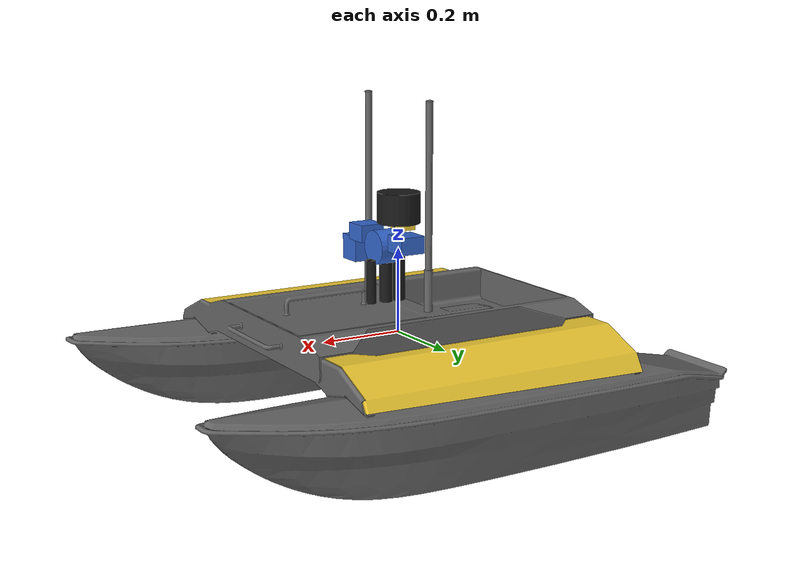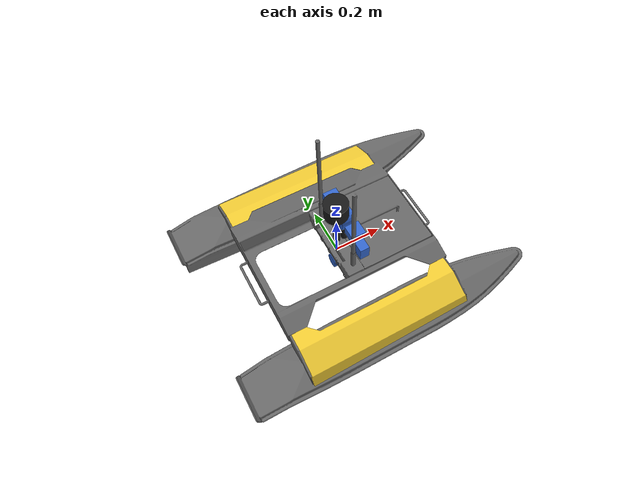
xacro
<?xml version="1.0"?>
<robot name="heron_sim" xmlns:xacro="http://www.ros.org/wiki/xacro">

  <xacro:arg name="namespace" default=""/>
  <xacro:property name="namespace" value="$(arg namespace)"/>

  <!-- Materials -->
  <material name="heron_grey">
    <color rgba="0.4 0.4 0.4 1"/>
  </material>
  <material name="heron_yellow">
    <color rgba="0.95 0.8 0.2 1"/>
  </material>
  <material name="black">
    <color rgba="0.1 0.1 0.1 1"/>
  </material>
  <material name="sensor_blue">
    <color rgba="0.2 0.4 0.8 1"/>
  </material>

  <!-- Heron Base Link (Hull) -->

  <link name="base_footprint"/>

  <joint name="base_footprint_joint" type="fixed">
    <origin xyz="0 0 0" rpy="0 0 0" />
    <parent link="base_footprint" />
    <child link="base_link" />
  </joint>

  <link name="base_link">
    <visual>
      <geometry>
        <mesh filename="package://heron_description/meshes/heron_base.stl" scale="1 1 1"/>
      </geometry>
      <origin xyz="0 0 0" rpy="0 0 0"/>
      <material name="heron_grey"/>
    </visual>
    <collision>
      <geometry>
        <box size="1.35 1.0 0.25"/>
      </geometry>
      <origin xyz="0 0 0.05" rpy="0 0 0"/>
    </collision>
    <inertial>
      <mass value="38.0"/>
      <origin xyz="0 0 0" rpy="0 0 0"/>
      <inertia ixx="3.4" ixy="0" ixz="0" iyy="6.0" iyz="0" izz="9.0"/>
    </inertial>
  </link>

  <!-- Left pontoon (visual only) -->
  <link name="left_pontoon">
    <visual>
      <geometry>
        <mesh filename="package://heron_description/meshes/left_panel.stl" scale="1 1 1"/>
      </geometry>
      <material name="heron_yellow"/>
      <origin xyz="0 0 0" rpy="0 0 0"/>
    </visual>
    <inertial>
      <mass value="0.1"/>
      <inertia ixx="0.001" ixy="0" ixz="0" iyy="0.001" iyz="0" izz="0.001"/>
    </inertial>
  </link>
  <joint name="left_pontoon_joint" type="fixed">
    <parent link="base_link"/>
    <child link="left_pontoon"/>
    <origin xyz="0 0.34495 0.04959" rpy="0 0 0"/>
  </joint>

  <!-- Right pontoon (visual only) -->
  <link name="right_pontoon">
    <visual>
      <geometry>
        <mesh filename="package://heron_description/meshes/right_panel.stl" scale="1 1 1"/>
      </geometry>
      <material name="heron_yellow"/>
      <origin xyz="0 0 0" rpy="0 0 0"/>
    </visual>
    <inertial>
      <mass value="0.1"/>
      <inertia ixx="0.001" ixy="0" ixz="0" iyy="0.001" iyz="0" izz="0.001"/>
    </inertial>
  </link>
  <joint name="right_pontoon_joint" type="fixed">
    <parent link="base_link"/>
    <child link="right_pontoon"/>
    <origin xyz="0 -0.34495 0.04959" rpy="0 0 0"/>
  </joint>

  <!-- IMU Sensor -->
  <link name="imu_link">
    <visual>
      <geometry>
        <box size="0.05 0.03 0.02"/>
      </geometry>
      <material name="heron_yellow"/>
    </visual>
    <inertial>
      <mass value="0.01"/>
      <inertia ixx="0.0001" ixy="0" ixz="0" iyy="0.0001" iyz="0" izz="0.0001"/>
    </inertial>
  </link>
  <joint name="imu_joint" type="fixed">
    <parent link="base_link"/>
    <child link="imu_link"/>
    <origin xyz="-0.01200 0.00000 0.25235" rpy="3.141592653589793 0 0"/>
  </joint>

  <gazebo>
    <plugin name="imu_controller" filename="libhector_gazebo_ros_imu.so">
      <updateRate>50.0</updateRate>
      <bodyName>imu_link</bodyName>
      <frameId>imu_link</frameId>
      <topicName>/sensors/imu/data</topicName>
      <accelDrift>0.005 0.005 0.005</accelDrift>
      <accelGaussianNoise>0.005 0.005 0.005</accelGaussianNoise>
      <rateDrift>0.005 0.005 0.005 </rateDrift>
      <rateGaussianNoise>0.005 0.005 0.005 </rateGaussianNoise>
      <headingDrift>0.005</headingDrift>
      <headingGaussianNoise>0.005</headingGaussianNoise>
    </plugin>
  </gazebo>

  <!-- GPS/NavSat link near the IMU for now. -->
  <link name="navsat_link">
    <inertial>
      <mass value="0.01"/>
      <inertia ixx="0.0001" ixy="0" ixz="0" iyy="0.0001" iyz="0" izz="0.0001"/>
    </inertial>
  </link>
  <joint name="navsat_joint" type="fixed">
    <parent link="base_link"/>
    <child link="navsat_link"/>
    <origin xyz="-0.01200 0.00000 0.29935" rpy="0 0 0"/>
  </joint>

  <!-- Horizontal Lidar (lidar_h) -->
  <!-- Seed mirrors slam_grande/config/sensors/heron_sensor_suite.yaml. -->
  <!-- Horizontal VLP-16: +X starboard, +Y bow, +Z up. -->
  <!-- Lidar H mount pole -->
  <link name="lidar_h_mount">
    <visual>
      <geometry>
        <cylinder radius="0.015" length="0.22"/>
      </geometry>
      <origin xyz="0 0 0" rpy="0 0 0"/>
      <material name="black"/>
    </visual>
    <inertial>
      <mass value="0.2"/>
      <inertia ixx="0.001" ixy="0" ixz="0" iyy="0.001" iyz="0" izz="0.001"/>
    </inertial>
  </link>
  <joint name="lidar_h_mount_joint" type="fixed">
    <parent link="base_link"/>
    <child link="lidar_h_mount"/>
    <origin xyz="0.00000 0.00000 0.16" rpy="0 0 0"/>
  </joint>

  <link name="lidar_h_link">
    <visual>
      <geometry>
        <cylinder radius="0.05086" length="0.07238"/>
      </geometry>
      <origin xyz="0 0 0" rpy="0 0 0"/>
      <material name="black"/>
    </visual>
    <collision>
      <geometry>
        <cylinder radius="0.05086" length="0.07238"/>
      </geometry>
    </collision>
    <inertial>
      <mass value="0.5"/>
      <inertia ixx="0.001" ixy="0" ixz="0" iyy="0.001" iyz="0" izz="0.001"/>
    </inertial>
  </link>
  <joint name="lidar_h_joint" type="fixed">
    <parent link="base_link"/>
    <child link="lidar_h_link"/>
    <origin xyz="0.00000 0.00000 0.29654" rpy="0 0 0"/>
  </joint>

  <!-- Vertical Lidar (lidar_v) -->
  <!-- Vertical VLP-16: +X port, +Y up, +Z forward. Keep the runtime
       ownership edge as lidar_h_link -> lidar_v_link. -->
  <!-- Lidar V mount pole -->
  <link name="lidar_v_mount">
    <visual>
      <geometry>
        <cylinder radius="0.012" length="0.14"/>
      </geometry>
      <origin xyz="0 0 0" rpy="0 0 0"/>
      <material name="black"/>
    </visual>
    <inertial>
      <mass value="0.1"/>
      <inertia ixx="0.001" ixy="0" ixz="0" iyy="0.001" iyz="0" izz="0.001"/>
    </inertial>
  </link>
  <joint name="lidar_v_mount_joint" type="fixed">
    <parent link="base_link"/>
    <child link="lidar_v_mount"/>
    <origin xyz="0.07400 0.00000 0.11" rpy="0 0 0"/>
  </joint>

  <link name="lidar_v_link">
    <visual>
      <geometry>
        <cylinder radius="0.04" length="0.06"/>
      </geometry>
      <origin xyz="0 0 0" rpy="0 0 0"/>
      <material name="sensor_blue"/>
    </visual>
    <collision>
      <geometry>
        <cylinder radius="0.04" length="0.06"/>
      </geometry>
    </collision>
    <inertial>
      <mass value="0.3"/>
      <inertia ixx="0.001" ixy="0" ixz="0" iyy="0.001" iyz="0" izz="0.001"/>
    </inertial>
  </link>
  <joint name="lidar_v_joint" type="fixed">
    <parent link="lidar_h_link"/>
    <child link="lidar_v_link"/>
    <origin xyz="0.03781 0.00000 -0.08819" rpy="1.5707963267948966 0 1.5707963267948966"/>
  </joint>

  <!-- Camera Mount Pole -->
  <link name="camera_mount">
    <visual>
      <geometry>
        <cylinder radius="0.015" length="0.20"/>
      </geometry>
      <origin xyz="0 0 0" rpy="0 0 0"/>
      <material name="black"/>
    </visual>
    <inertial>
      <mass value="0.2"/>
      <inertia ixx="0.001" ixy="0" ixz="0" iyy="0.001" iyz="0" izz="0.001"/>
    </inertial>
  </link>
  <joint name="camera_mount_joint" type="fixed">
    <parent link="base_link"/>
    <child link="camera_mount"/>
    <origin xyz="0.03445 0.00000 0.13000" rpy="0 0 0"/>
  </joint>

  <!-- Camera F1 (forward starboard) -->
  <link name="F1">
    <visual>
      <geometry>
        <box size="0.06 0.06 0.04"/>
      </geometry>
      <material name="sensor_blue"/>
    </visual>
    <collision>
      <geometry>
        <box size="0.06 0.06 0.04"/>
      </geometry>
    </collision>
    <inertial>
      <mass value="0.1"/>
      <inertia ixx="0.001" ixy="0" ixz="0" iyy="0.001" iyz="0" izz="0.001"/>
    </inertial>
  </link>
  <joint name="F1_joint" type="fixed">
    <parent link="base_link"/>
    <child link="F1"/>
    <origin xyz="0.03445 -0.089655 0.22909" rpy="0 0 0"/>
  </joint>

  <!-- Camera F1 optical frame -->
  <link name="F1_optical"/>
  <joint name="F1_optical_joint" type="fixed">
    <parent link="F1"/>
    <child link="F1_optical"/>
    <origin xyz="0 0 0" rpy="-1.5707963267948966 0 -1.5707963267948966"/>
  </joint>

  <xacro:if value="$(optenv HERON_CAMERA_F2 1)">
    <!-- Camera F2 (forward port) -->
    <link name="F2">
      <visual>
        <geometry>
          <box size="0.06 0.06 0.04"/>
        </geometry>
        <material name="sensor_blue"/>
      </visual>
      <collision>
        <geometry>
          <box size="0.06 0.06 0.04"/>
        </geometry>
      </collision>
      <inertial>
        <mass value="0.1"/>
        <inertia ixx="0.001" ixy="0" ixz="0" iyy="0.001" iyz="0" izz="0.001"/>
      </inertial>
    </link>
    <joint name="F2_joint" type="fixed">
      <parent link="base_link"/>
      <child link="F2"/>
      <origin xyz="0.03445 0.089655 0.22909" rpy="0 0 0"/>
    </joint>

    <!-- Camera F2 optical frame -->
    <link name="F2_optical"/>
    <joint name="F2_optical_joint" type="fixed">
      <parent link="F2"/>
      <child link="F2_optical"/>
      <origin xyz="0 0 0" rpy="-1.5707963267948966 0 -1.5707963267948966"/>
    </joint>
  </xacro:if>

  <xacro:if value="$(optenv HERON_CAMERA_F3 0)">
    <!-- Camera F3 (upward port) -->
    <link name="F3">
      <visual>
        <geometry>
          <box size="0.06 0.06 0.04"/>
        </geometry>
        <material name="sensor_blue"/>
      </visual>
      <collision>
        <geometry>
          <box size="0.06 0.06 0.04"/>
        </geometry>
      </collision>
      <inertial>
        <mass value="0.1"/>
        <inertia ixx="0.001" ixy="0" ixz="0" iyy="0.001" iyz="0" izz="0.001"/>
      </inertial>
    </link>
    <joint name="F3_joint" type="fixed">
      <parent link="base_link"/>
      <child link="F3"/>
      <origin xyz="0.03445 0.136515 0.18339" rpy="0 -1.5707963267948966 0"/>
    </joint>

    <!-- Camera F3 optical frame -->
    <link name="F3_optical"/>
    <joint name="F3_optical_joint" type="fixed">
      <parent link="F3"/>
      <child link="F3_optical"/>
      <origin xyz="0 0 0" rpy="-1.5707963267948966 0 -1.5707963267948966"/>
    </joint>
  </xacro:if>

  <xacro:if value="$(optenv HERON_CAMERA_F4 1)">
    <!-- Camera F4 (upward starboard) -->
    <link name="F4">
      <visual>
        <geometry>
          <box size="0.06 0.06 0.04"/>
        </geometry>
        <material name="sensor_blue"/>
      </visual>
      <collision>
        <geometry>
          <box size="0.06 0.06 0.04"/>
        </geometry>
      </collision>
      <inertial>
        <mass value="0.1"/>
        <inertia ixx="0.001" ixy="0" ixz="0" iyy="0.001" iyz="0" izz="0.001"/>
      </inertial>
    </link>
    <joint name="F4_joint" type="fixed">
      <parent link="base_link"/>
      <child link="F4"/>
      <origin xyz="0.03445 -0.136515 0.18339" rpy="0 -1.5707963267948966 0"/>
    </joint>

    <!-- Camera F4 optical frame -->
    <link name="F4_optical"/>
    <joint name="F4_optical_joint" type="fixed">
      <parent link="F4"/>
      <child link="F4_optical"/>
      <origin xyz="0 0 0" rpy="-1.5707963267948966 0 -1.5707963267948966"/>
    </joint>
  </xacro:if>

  <!-- Sonar -->
  <!-- Position: (0, 0, 80)mm -> (0, 0, -0.08)m (below waterline) -->
  <link name="sonar_link">
    <visual>
      <geometry>
        <cylinder radius="0.03" length="0.05"/>
      </geometry>
      <material name="sensor_blue"/>
    </visual>
    <inertial>
      <mass value="0.1"/>
      <inertia ixx="0.001" ixy="0" ixz="0" iyy="0.001" iyz="0" izz="0.001"/>
    </inertial>
  </link>
  <joint name="sonar_joint" type="fixed">
    <parent link="base_link"/>
    <child link="sonar_link"/>
    <origin xyz="0 0 -0.08" rpy="0 1.5708 0"/>
  </joint>

  <gazebo reference="sonar_link">
    <sensor type="ray" name="sonar">
      <update_rate>20</update_rate>
      <ray>
         <scan>
            <horizontal>
               <samples>480</samples>
               <resolution>1</resolution>
               <min_angle>-1.047198</min_angle>
               <max_angle>1.047198</max_angle>
            </horizontal>
            <vertical>
               <samples>1</samples>
               <resolution>1</resolution>
               <min_angle>0.0</min_angle>
               <max_angle>0.0</max_angle>
            </vertical>
         </scan>
         <range>
            <min>0.5</min>
            <max>100.0</max>
            <resolution>0.02</resolution>
         </range>
      </ray>
      <plugin name="sonar_plugin" filename="libgazebo_ros_velodyne_laser.so">
        <topicName>/sensors/sonar/scan</topicName>
        <frameName>sonar_link</frameName>
        <min_range>0.5</min_range>
        <max_range>100.0</max_range>
        <gaussianNoise>0.003</gaussianNoise>
        <organize_cloud>false</organize_cloud>
        <min_intensity>0.0</min_intensity>
      </plugin>
    </sensor>
  </gazebo>

  <!-- Debug/Extra Links (for compatibility) -->
  <link name="debug_extra_link"/>
  <joint name="debug_extra_joint" type="fixed">
    <parent link="base_link"/>
    <child link="debug_extra_link"/>
    <origin xyz="0 0 0" rpy="0 0 0"/>
  </joint>

  <link name="compat_extra_link"/>
  <joint name="compat_extra_joint" type="fixed">
    <parent link="base_link"/>
    <child link="compat_extra_link"/>
    <origin xyz="0 0 0" rpy="0 0 0"/>
  </joint>

  <link name="left_panel_link"/>
  <joint name="left_panel_joint" type="fixed">
    <parent link="base_link"/>
    <child link="left_panel_link"/>
    <origin xyz="0 0.5 0.1" rpy="0 0 0"/>
  </joint>

  <link name="right_panel_link"/>
  <joint name="right_panel_joint" type="fixed">
    <parent link="base_link"/>
    <child link="right_panel_link"/>
    <origin xyz="0 -0.5 0.1" rpy="0 0 0"/>
  </joint>

  <link name="rear_plate"/>
  <joint name="rear_plate_joint" type="fixed">
    <parent link="base_link"/>
    <child link="rear_plate"/>
    <origin xyz="-0.5 0 0.1" rpy="0 0 0"/>
  </joint>

  <!-- Gazebo Materials -->
  <gazebo reference="base_link">
    <material>Gazebo/DarkGrey</material>
  </gazebo>
  <gazebo reference="left_pontoon">
    <material>Gazebo/Yellow</material>
  </gazebo>
  <gazebo reference="right_pontoon">
    <material>Gazebo/Yellow</material>
  </gazebo>
  <gazebo reference="lidar_h_link">
    <material>Gazebo/Black</material>
  </gazebo>
  <gazebo reference="lidar_v_link">
    <material>Gazebo/Blue</material>
  </gazebo>

  <!-- Horizontal Lidar Gazebo Plugin -->
  <!-- Velodyne VLP-16 model: 16 channels, 360 degree sweep, 10 Hz at 600 RPM. -->
  <gazebo reference="lidar_h_link">
    <sensor type="ray" name="lidar_h_sensor">
      <pose>0 0 0 0 0 0</pose>
      <visualize>false</visualize>
      <update_rate>10</update_rate>
      <ray>
        <scan>
          <horizontal>
            <samples>1800</samples>
            <resolution>1</resolution>
            <min_angle>-3.14159</min_angle>
            <max_angle>3.14159</max_angle>
          </horizontal>
          <vertical>
            <samples>16</samples>
            <resolution>1</resolution>
            <min_angle>-0.261799</min_angle> <!-- -15 deg -->
            <max_angle>0.261799</max_angle>  <!-- +15 deg -->
          </vertical>
        </scan>
        <range>
          <min>0.15</min>
          <max>200.0</max>
          <resolution>0.01</resolution>
        </range>
        <noise>
          <type>gaussian</type>
          <mean>0.0</mean>
          <stddev>0.01</stddev>
        </noise>
      </ray>
      <plugin name="lidar_h_plugin" filename="libgazebo_ros_velodyne_laser.so">
        <topicName>/sensors/lidar/hori/points</topicName>
        <frameName>lidar_h_link</frameName>
        <min_range>0.1</min_range>
        <max_range>200.0</max_range>
        <gaussianNoise>0.005</gaussianNoise>
        <organize_cloud>false</organize_cloud>
        <min_intensity>0.0</min_intensity>
      </plugin>
    </sensor>
  </gazebo>

  <!-- Vertical Lidar Gazebo Plugin -->
  <!-- Same VLP-16 model as lidar_h; lidar_v_link already carries the mount frame. -->
  <gazebo reference="lidar_v_link">
    <sensor type="ray" name="lidar_v_sensor">
      <pose>0 0 0 0 0 0</pose>
      <visualize>false</visualize>
      <update_rate>10</update_rate>
      <ray>
        <scan>
          <horizontal>
            <samples>1800</samples>
            <resolution>1</resolution>
            <min_angle>-3.14159</min_angle>
            <max_angle>3.14159</max_angle>
          </horizontal>
          <vertical>
            <samples>16</samples>
            <resolution>1</resolution>
            <min_angle>-0.261799</min_angle>
            <max_angle>0.261799</max_angle>
          </vertical>
        </scan>
        <range>
          <min>0.1</min>
          <max>200.0</max>
          <resolution>0.01</resolution>
        </range>
        <noise>
          <type>gaussian</type>
          <mean>0.0</mean>
          <stddev>0.01</stddev>
        </noise>
      </ray>
      <plugin name="lidar_v_plugin" filename="libgazebo_ros_velodyne_laser.so">
        <topicName>/sensors/lidar/vert/points</topicName>
        <frameName>lidar_v_link</frameName>
        <min_range>0.1</min_range>
        <max_range>200.0</max_range>
        <gaussianNoise>0.005</gaussianNoise>
        <organize_cloud>false</organize_cloud>
        <min_intensity>0.0</min_intensity>
      </plugin>
    </sensor>
  </gazebo>

  <!-- Camera F1 Gazebo Plugin -->
  <gazebo reference="F1">
    <sensor type="camera" name="camera_F1">
      <update_rate>15.0</update_rate>
      <camera name="F1">
        <horizontal_fov>1.60</horizontal_fov>
        <image>
          <width>1280</width>
          <height>1024</height>
          <format>R8G8B8</format>
        </image>
        <clip>
          <near>0.02</near>
          <far>100</far>
        </clip>
        <visibility_mask>4294967294</visibility_mask>
        <noise>
          <type>gaussian</type>
          <mean>0.0</mean>
          <stddev>0.007</stddev>
        </noise>
      </camera>
      <plugin name="camera_F1_controller" filename="libgazebo_ros_camera.so">
        <alwaysOn>true</alwaysOn>
        <updateRate>15.0</updateRate>
        <cameraName>sensors/camera/f1</cameraName>
        <imageTopicName>image_raw</imageTopicName>
        <cameraInfoTopicName>camera_info</cameraInfoTopicName>
        <frameName>F1_optical</frameName>
      </plugin>
    </sensor>
  </gazebo>

  <xacro:if value="$(optenv HERON_CAMERA_F2 1)">
    <!-- Camera F2 Gazebo Plugin -->
    <gazebo reference="F2">
      <sensor type="camera" name="camera_F2">
        <update_rate>15.0</update_rate>
        <camera name="F2">
          <horizontal_fov>1.60</horizontal_fov>
          <image>
            <width>1280</width>
            <height>1024</height>
            <format>R8G8B8</format>
          </image>
          <clip>
            <near>0.02</near>
            <far>100</far>
          </clip>
          <visibility_mask>4294967294</visibility_mask>
          <noise>
            <type>gaussian</type>
            <mean>0.0</mean>
            <stddev>0.007</stddev>
          </noise>
        </camera>
        <plugin name="camera_F2_controller" filename="libgazebo_ros_camera.so">
          <alwaysOn>true</alwaysOn>
          <updateRate>15.0</updateRate>
          <cameraName>sensors/camera/f2</cameraName>
          <imageTopicName>image_raw</imageTopicName>
          <cameraInfoTopicName>camera_info</cameraInfoTopicName>
          <frameName>F2_optical</frameName>
        </plugin>
      </sensor>
    </gazebo>
  </xacro:if>

  <xacro:if value="$(optenv HERON_CAMERA_F3 0)">
    <!-- Camera F3 Gazebo Plugin -->
    <gazebo reference="F3">
      <sensor type="camera" name="camera_F3">
        <update_rate>15.0</update_rate>
        <camera name="F3">
          <horizontal_fov>1.60</horizontal_fov>
          <image>
            <width>1280</width>
            <height>1024</height>
            <format>R8G8B8</format>
          </image>
          <clip>
            <near>0.02</near>
            <far>100</far>
          </clip>
          <visibility_mask>4294967294</visibility_mask>
          <noise>
            <type>gaussian</type>
            <mean>0.0</mean>
            <stddev>0.007</stddev>
          </noise>
        </camera>
        <plugin name="camera_F3_controller" filename="libgazebo_ros_camera.so">
          <alwaysOn>true</alwaysOn>
          <updateRate>15.0</updateRate>
          <cameraName>sensors/camera/f3</cameraName>
          <imageTopicName>image_raw</imageTopicName>
          <cameraInfoTopicName>camera_info</cameraInfoTopicName>
          <frameName>F3_optical</frameName>
        </plugin>
      </sensor>
    </gazebo>
  </xacro:if>

  <xacro:if value="$(optenv HERON_CAMERA_F4 1)">
    <!-- Camera F4 Gazebo Plugin -->
    <gazebo reference="F4">
      <sensor type="camera" name="camera_F4">
        <update_rate>15.0</update_rate>
        <camera name="F4">
          <horizontal_fov>1.60</horizontal_fov>
          <image>
            <width>1280</width>
            <height>1024</height>
            <format>R8G8B8</format>
          </image>
          <clip>
            <near>0.02</near>
            <far>100</far>
          </clip>
          <visibility_mask>4294967294</visibility_mask>
          <noise>
            <type>gaussian</type>
            <mean>0.0</mean>
            <stddev>0.007</stddev>
          </noise>
        </camera>
        <plugin name="camera_F4_controller" filename="libgazebo_ros_camera.so">
          <alwaysOn>true</alwaysOn>
          <updateRate>15.0</updateRate>
          <cameraName>sensors/camera/f4</cameraName>
          <imageTopicName>image_raw</imageTopicName>
          <cameraInfoTopicName>camera_info</cameraInfoTopicName>
          <frameName>F4_optical</frameName>
        </plugin>
      </sensor>
    </gazebo>
  </xacro:if>

  <!-- Ground truth odometry via p3d plugin -->
  <gazebo>
    <plugin name="p3d_base_controller" filename="libgazebo_ros_p3d.so">
      <alwaysOn>true</alwaysOn>
      <updateRate>50.0</updateRate>
      <bodyName>base_link</bodyName>
      <topicName>ground_truth/odom</topicName>
      <gaussianNoise>0.01</gaussianNoise>
      <frameName>map</frameName>
      <xyzOffsets>0 0 0</xyzOffsets>
      <rpyOffsets>0 0 0</rpyOffsets>
    </plugin>
  </gazebo>

  <!-- Planar move plugin for simplified USV dynamics (responds to cmd_vel) -->
  <gazebo>
    <plugin name="object_controller" filename="libgazebo_ros_planar_move.so">
      <commandTopic>/cmd_vel</commandTopic>
      <odometryTopic>/state/odometry</odometryTopic>
      <odometryFrame>odom</odometryFrame>
      <odometryRate>50.0</odometryRate>
      <robotBaseFrame>base_link</robotBaseFrame>
      <publishOdomTF>false</publishOdomTF>
      <cmdTimeout>-1.0</cmdTimeout>
    </plugin>
  </gazebo>

  <!-- Passive external wrench hook. Canonical slam_grande bringup does not
       publish this topic. -->
  <gazebo>
    <plugin name="gazebo_ros_force" filename="libgazebo_ros_force.so">
      <alwaysOn>true</alwaysOn>
      <updateRate>50.0</updateRate>
      <bodyName>base_link</bodyName>
      <topicName>heron/hydro_forces</topicName>
    </plugin>
  </gazebo>

</robot>
